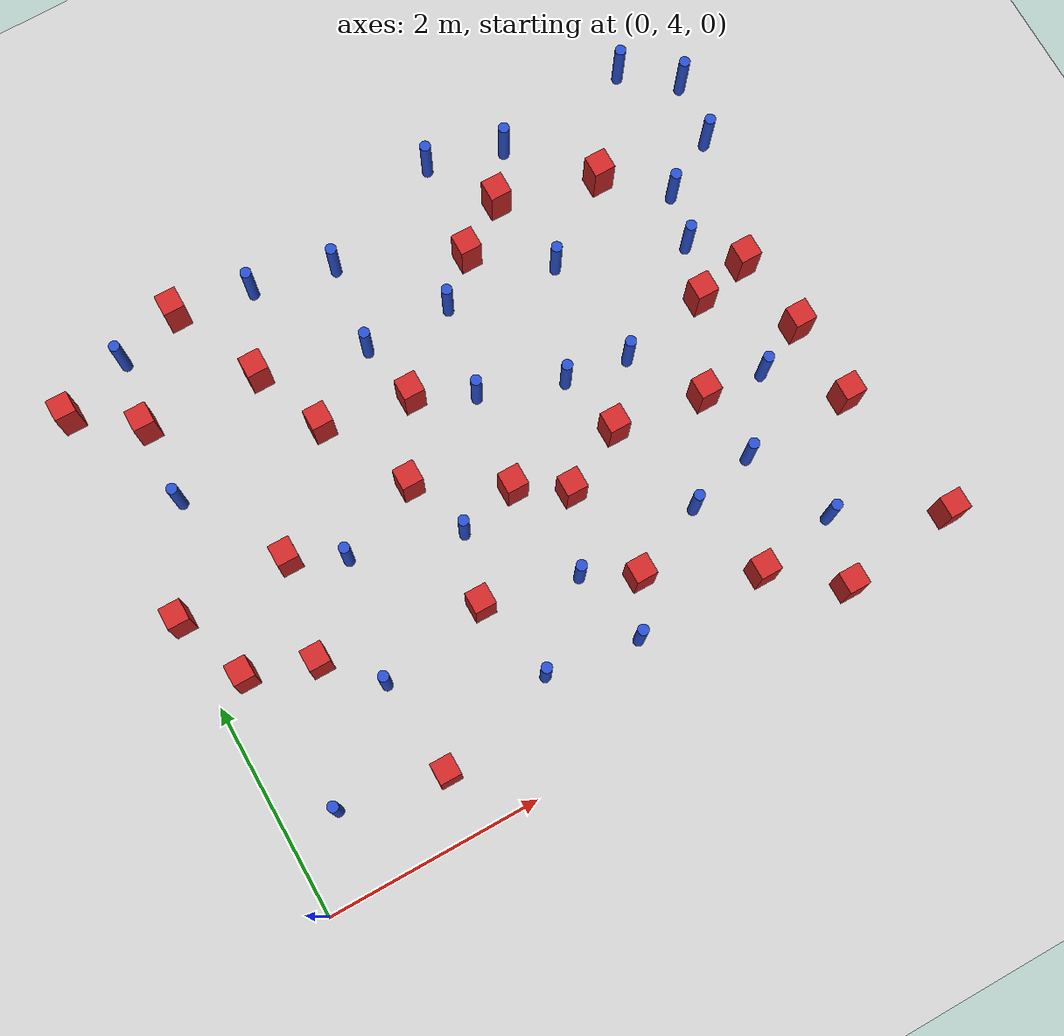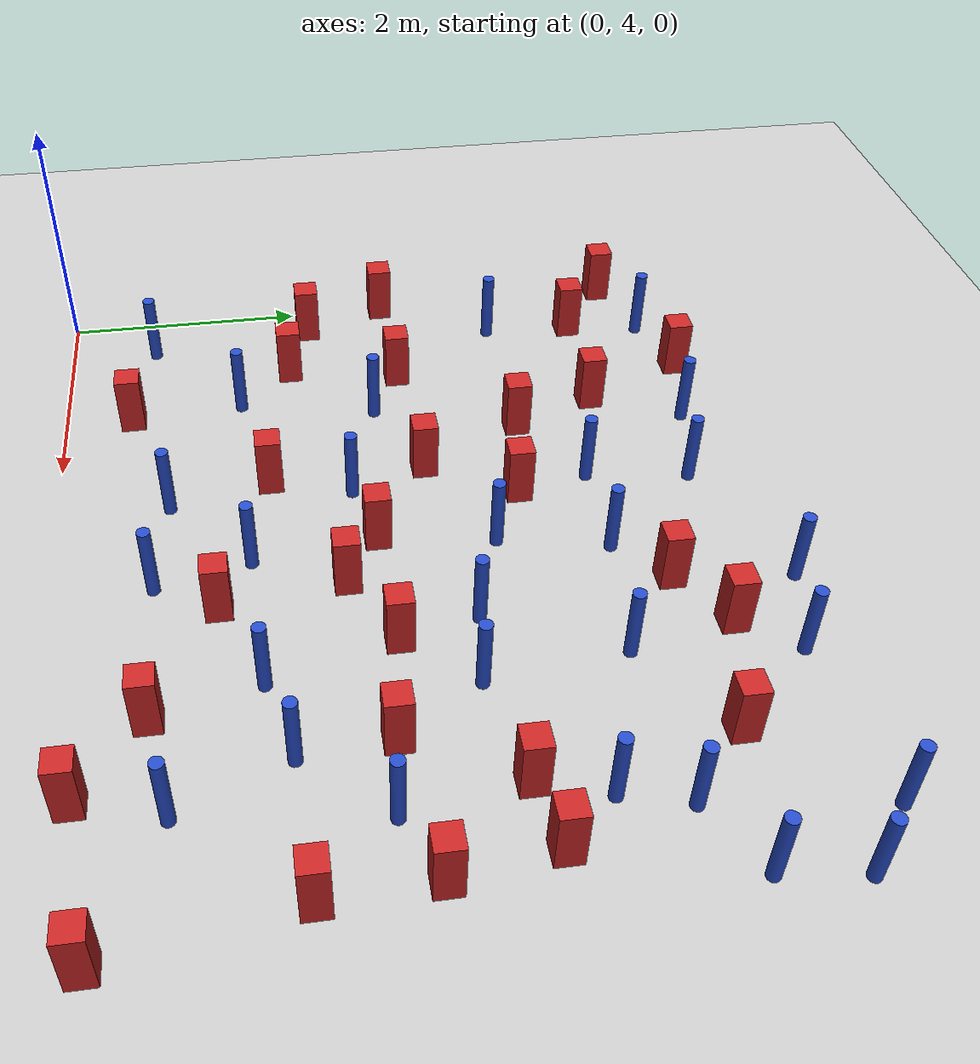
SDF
<sdf version="1.6">
 <world name="default">
  <model name="ground_plane">
   <static>1</static>
   <link name="link">
    <collision name="collision">
     <geometry><plane><normal>0 0 1</normal><size>100 100</size></plane></geometry>
     <surface><friction><ode><mu>100</mu><mu2>50</mu2></ode></friction></surface>
    </collision>
    <visual name="visual">
     <cast_shadows>0</cast_shadows>
     <geometry><plane><normal>0 0 1</normal><size>100 100</size></plane></geometry>
     <material>
      <ambient>1.0 1.0 1.0 1.0</ambient>
      <diffuse>0.8 0.8 0.8 1.0</diffuse>
      <specular>0.01 0.01 0.01 1.000000</specular>
     </material>
    </visual>
   </link>
  </model>
  <model name="pole_obstacle0">
   <static>true</static>
   <pose>3.42519751662 4.76027807811 -9.47619616065e-06 5.49618799738e-07 2.3631041406e-07 -1.55090534801e-07</pose>
   <link name="link">
    <pose>0 0 0.3 0 -0 0</pose>
    <inertial>
     <mass>1</mass>
     <inertia><ixx>0.145833</ixx><ixy>0</ixy><ixz>0</ixz><iyy>0.145833</iyy><iyz>0</iyz><izz>0.125</izz></inertia>
    </inertial>
    <collision name="collision">
     <geometry><cylinder><radius>0.05</radius><length>.6</length></cylinder></geometry>
    </collision>
    <visual name="visual">
     <geometry><cylinder><radius>0.05</radius><length>.6</length></cylinder></geometry>
     <material>
      <script><name>Gazebo/Blue</name><uri>file://media/materials/scripts/gazebo.material</uri></script>
     </material>
    </visual>
   </link>
  </model>
  <model name="square_post_obstacle2">
   <static>true</static>
   <pose>4.30037438824 8.85950573954 -6.11067671241e-07 -5.50515727128e-06 -8.79689657224e-07 2.37013304536e-05</pose>
   <link name="link">
    <pose>0 0 0.25 0 -0 0</pose>
    <inertial>
     <mass>100</mass>
     <inertia>
      <ixx>0.166667</ixx>
      <ixy>0</ixy>
      <ixz>0</ixz>
      <iyy>0.166667</iyy>
      <iyz>0</iyz>
      <izz>0.166667</izz>
     </inertia>
    </inertial>
    <collision name="collision"><geometry><box><size>.2 .2 .5</size></box></geometry></collision>
    <visual name="visual">
     <geometry><box><size>.2 .2 .5</size></box></geometry>
     <material>
      <script><name>Gazebo/Red</name><uri>file://media/materials/scripts/gazebo.material</uri></script>
     </material>
    </visual>
   </link>
  </model>
  <model name="pole_obstacle7">
   <static>true</static>
   <pose>2.56446868033 4.87630658331 -9.47619616065e-06 5.49618799738e-07 2.3631041406e-07 -1.55090534801e-07</pose>
   <link name="link">
    <pose>0 0 0.3 0 -0 0</pose>
    <inertial>
     <mass>1</mass>
     <inertia><ixx>0.145833</ixx><ixy>0</ixy><ixz>0</ixz><iyy>0.145833</iyy><iyz>0</iyz><izz>0.125</izz></inertia>
    </inertial>
    <collision name="collision">
     <geometry><cylinder><radius>0.05</radius><length>.6</length></cylinder></geometry>
    </collision>
    <visual name="visual">
     <geometry><cylinder><radius>0.05</radius><length>.6</length></cylinder></geometry>
     <material>
      <script><name>Gazebo/Blue</name><uri>file://media/materials/scripts/gazebo.material</uri></script>
     </material>
    </visual>
   </link>
  </model>
  <model name="square_post_obstacle11">
   <static>true</static>
   <pose>2.37454379669 5.67371568541 -6.11067671241e-07 -5.50515727128e-06 -8.79689657224e-07 2.37013304536e-05</pose>
   <link name="link">
    <pose>0 0 0.25 0 -0 0</pose>
    <inertial>
     <mass>100</mass>
     <inertia>
      <ixx>0.166667</ixx>
      <ixy>0</ixy>
      <ixz>0</ixz>
      <iyy>0.166667</iyy>
      <iyz>0</iyz>
      <izz>0.166667</izz>
     </inertia>
    </inertial>
    <collision name="collision"><geometry><box><size>.2 .2 .5</size></box></geometry></collision>
    <visual name="visual">
     <geometry><box><size>.2 .2 .5</size></box></geometry>
     <material>
      <script><name>Gazebo/Red</name><uri>file://media/materials/scripts/gazebo.material</uri></script>
     </material>
    </visual>
   </link>
  </model>
  <model name="square_post_obstacle25">
   <static>true</static>
   <pose>0.0494147492962 6.81524809905 -6.11067671241e-07 -5.50515727128e-06 -8.79689657224e-07 2.37013304536e-05</pose>
   <link name="link">
    <pose>0 0 0.25 0 -0 0</pose>
    <inertial>
     <mass>100</mass>
     <inertia>
      <ixx>0.166667</ixx>
      <ixy>0</ixy>
      <ixz>0</ixz>
      <iyy>0.166667</iyy>
      <iyz>0</iyz>
      <izz>0.166667</izz>
     </inertia>
    </inertial>
    <collision name="collision"><geometry><box><size>.2 .2 .5</size></box></geometry></collision>
    <visual name="visual">
     <geometry><box><size>.2 .2 .5</size></box></geometry>
     <material>
      <script><name>Gazebo/Red</name><uri>file://media/materials/scripts/gazebo.material</uri></script>
     </material>
    </visual>
   </link>
  </model>
  <model name="pole_obstacle20">
   <static>true</static>
   <pose>4.60419100089 6.99728581135 -9.47619616065e-06 5.49618799737e-07 2.36310414037e-07 -1.55090534814e-07</pose>
   <link name="link">
    <pose>0 0 0.3 0 -0 0</pose>
    <inertial>
     <mass>1</mass>
     <inertia><ixx>0.145833</ixx><ixy>0</ixy><ixz>0</ixz><iyy>0.145833</iyy><iyz>0</iyz><izz>0.125</izz></inertia>
    </inertial>
    <collision name="collision">
     <geometry><cylinder><radius>0.05</radius><length>.6</length></cylinder></geometry>
    </collision>
    <visual name="visual">
     <geometry><cylinder><radius>0.05</radius><length>.6</length></cylinder></geometry>
     <material>
      <script><name>Gazebo/Blue</name><uri>file://media/materials/scripts/gazebo.material</uri></script>
     </material>
    </visual>
   </link>
  </model>
  <model name="square_post_obstacle38">
   <static>true</static>
   <pose>4.15965569604 6.48254933006 -6.11067671241e-07 -5.50515727128e-06 -8.79689657224e-07 2.37013304536e-05</pose>
   <link name="link">
    <pose>0 0 0.25 0 -0 0</pose>
    <inertial>
     <mass>100</mass>
     <inertia>
      <ixx>0.166667</ixx>
      <ixy>0</ixy>
      <ixz>0</ixz>
      <iyy>0.166667</iyy>
      <iyz>0</iyz>
      <izz>0.166667</izz>
     </inertia>
    </inertial>
    <collision name="collision"><geometry><box><size>.2 .2 .5</size></box></geometry></collision>
    <visual name="visual">
     <geometry><box><size>.2 .2 .5</size></box></geometry>
     <material>
      <script><name>Gazebo/Red</name><uri>file://media/materials/scripts/gazebo.material</uri></script>
     </material>
    </visual>
   </link>
  </model>
  <model name="square_post_obstacle41">
   <static>true</static>
   <pose>3.12206015633 6.44788419928 -6.11067671241e-07 -5.50515727128e-06 -8.79689657224e-07 2.37013304536e-05</pose>
   <link name="link">
    <pose>0 0 0.25 0 -0 0</pose>
    <inertial>
     <mass>100</mass>
     <inertia>
      <ixx>0.166667</ixx>
      <ixy>0</ixy>
      <ixz>0</ixz>
      <iyy>0.166667</iyy>
      <iyz>0</iyz>
      <izz>0.166667</izz>
     </inertia>
    </inertial>
    <collision name="collision"><geometry><box><size>.2 .2 .5</size></box></geometry></collision>
    <visual name="visual">
     <geometry><box><size>.2 .2 .5</size></box></geometry>
     <material>
      <script><name>Gazebo/Red</name><uri>file://media/materials/scripts/gazebo.material</uri></script>
     </material>
    </visual>
   </link>
  </model>
  <model name="square_post_obstacle44">
   <static>true</static>
   <pose>1.10441877782 6.84504324427 -6.11067671241e-07 -5.50515727128e-06 -8.79689657224e-07 2.37013304536e-05</pose>
   <link name="link">
    <pose>0 0 0.25 0 -0 0</pose>
    <inertial>
     <mass>100</mass>
     <inertia>
      <ixx>0.166667</ixx>
      <ixy>0</ixy>
      <ixz>0</ixz>
      <iyy>0.166667</iyy>
      <iyz>0</iyz>
      <izz>0.166667</izz>
     </inertia>
    </inertial>
    <collision name="collision"><geometry><box><size>.2 .2 .5</size></box></geometry></collision>
    <visual name="visual">
     <geometry><box><size>.2 .2 .5</size></box></geometry>
     <material>
      <script><name>Gazebo/Red</name><uri>file://media/materials/scripts/gazebo.material</uri></script>
     </material>
    </visual>
   </link>
  </model>
  <model name="pole_obstacle46">
   <static>true</static>
   <pose>1.34421958619 5.47691415157 -9.47619616065e-06 5.49618799737e-07 2.36310414061e-07 -1.550905348e-07</pose>
   <link name="link">
    <pose>0 0 0.3 0 -0 0</pose>
    <inertial>
     <mass>1</mass>
     <inertia><ixx>0.145833</ixx><ixy>0</ixy><ixz>0</ixz><iyy>0.145833</iyy><iyz>0</iyz><izz>0.125</izz></inertia>
    </inertial>
    <collision name="collision">
     <geometry><cylinder><radius>0.05</radius><length>.6</length></cylinder></geometry>
    </collision>
    <visual name="visual">
     <geometry><cylinder><radius>0.05</radius><length>.6</length></cylinder></geometry>
     <material>
      <script><name>Gazebo/Blue</name><uri>file://media/materials/scripts/gazebo.material</uri></script>
     </material>
    </visual>
   </link>
  </model>
  <model name="pole_obstacle47">
   <static>true</static>
   <pose>4.42553539507 5.52645977439 -9.47619616065e-06 5.49618799737e-07 2.36310414037e-07 -1.55090534814e-07</pose>
   <link name="link">
    <pose>0 0 0.3 0 -0 0</pose>
    <inertial>
     <mass>1</mass>
     <inertia><ixx>0.145833</ixx><ixy>0</ixy><ixz>0</ixz><iyy>0.145833</iyy><iyz>0</iyz><izz>0.125</izz></inertia>
    </inertial>
    <collision name="collision">
     <geometry><cylinder><radius>0.05</radius><length>.6</length></cylinder></geometry>
    </collision>
    <visual name="visual">
     <geometry><cylinder><radius>0.05</radius><length>.6</length></cylinder></geometry>
     <material>
      <script><name>Gazebo/Blue</name><uri>file://media/materials/scripts/gazebo.material</uri></script>
     </material>
    </visual>
   </link>
  </model>
  <model name="pole_obstacle48">
   <static>true</static>
   <pose>3.43337528128 8.19324354949 -9.4761961606e-06 5.49618799729e-07 2.36310414e-07 -1.55090534824e-07</pose>
   <link name="link">
    <pose>0 0 0.3 0 -0 0</pose>
    <inertial>
     <mass>1</mass>
     <inertia><ixx>0.145833</ixx><ixy>0</ixy><ixz>0</ixz><iyy>0.145833</iyy><iyz>0</iyz><izz>0.125</izz></inertia>
    </inertial>
    <collision name="collision">
     <geometry><cylinder><radius>0.05</radius><length>.6</length></cylinder></geometry>
    </collision>
    <visual name="visual">
     <geometry><cylinder><radius>0.05</radius><length>.6</length></cylinder></geometry>
     <material>
      <script><name>Gazebo/Blue</name><uri>file://media/materials/scripts/gazebo.material</uri></script>
     </material>
    </visual>
   </link>
  </model>
  <model name="square_post_obstacle52">
   <static>true</static>
   <pose>5.00746271588 6.36337434543 -6.11067671241e-07 -5.50515727128e-06 -8.79689657224e-07 2.37013304536e-05</pose>
   <link name="link">
    <pose>0 0 0.25 0 -0 0</pose>
    <inertial>
     <mass>100</mass>
     <inertia>
      <ixx>0.166667</ixx>
      <ixy>0</ixy>
      <ixz>0</ixz>
      <iyy>0.166667</iyy>
      <iyz>0</iyz>
      <izz>0.166667</izz>
     </inertia>
    </inertial>
    <collision name="collision"><geometry><box><size>.2 .2 .5</size></box></geometry></collision>
    <visual name="visual">
     <geometry><box><size>.2 .2 .5</size></box></geometry>
     <material>
      <script><name>Gazebo/Red</name><uri>file://media/materials/scripts/gazebo.material</uri></script>
     </material>
    </visual>
   </link>
  </model>
  <model name="pole_obstacle56">
   <static>true</static>
   <pose>1.96920921197 9.18855052757 -9.47619616065e-06 5.49618799737e-07 2.3631041405e-07 -1.55090534805e-07</pose>
   <link name="link">
    <pose>0 0 0.3 0 -0 0</pose>
    <inertial>
     <mass>1</mass>
     <inertia><ixx>0.145833</ixx><ixy>0</ixy><ixz>0</ixz><iyy>0.145833</iyy><iyz>0</iyz><izz>0.125</izz></inertia>
    </inertial>
    <collision name="collision">
     <geometry><cylinder><radius>0.05</radius><length>.6</length></cylinder></geometry>
    </collision>
    <visual name="visual">
     <geometry><cylinder><radius>0.05</radius><length>.6</length></cylinder></geometry>
     <material>
      <script><name>Gazebo/Blue</name><uri>file://media/materials/scripts/gazebo.material</uri></script>
     </material>
    </visual>
   </link>
  </model>
  <model name="pole_obstacle59">
   <static>true</static>
   <pose>4.47045693877 8.06714442049 -9.47619616065e-06 5.49618799737e-07 2.36310414065e-07 -1.55090534796e-07</pose>
   <link name="link">
    <pose>0 0 0.3 0 -0 0</pose>
    <inertial>
     <mass>1</mass>
     <inertia><ixx>0.145833</ixx><ixy>0</ixy><ixz>0</ixz><iyy>0.145833</iyy><iyz>0</iyz><izz>0.125</izz></inertia>
    </inertial>
    <collision name="collision">
     <geometry><cylinder><radius>0.05</radius><length>.6</length></cylinder></geometry>
    </collision>
    <visual name="visual">
     <geometry><cylinder><radius>0.05</radius><length>.6</length></cylinder></geometry>
     <material>
      <script><name>Gazebo/Blue</name><uri>file://media/materials/scripts/gazebo.material</uri></script>
     </material>
    </visual>
   </link>
  </model>
  <model name="square_post_obstacle63">
   <static>true</static>
   <pose>0.0136247869274 8.92046963981 -6.11067671241e-07 -5.50515727128e-06 -8.79689657224e-07 2.37013304536e-05</pose>
   <link name="link">
    <pose>0 0 0.25 0 -0 0</pose>
    <inertial>
     <mass>100</mass>
     <inertia>
      <ixx>0.166667</ixx>
      <ixy>0</ixy>
      <ixz>0</ixz>
      <iyy>0.166667</iyy>
      <iyz>0</iyz>
      <izz>0.166667</izz>
     </inertia>
    </inertial>
    <collision name="collision"><geometry><box><size>.2 .2 .5</size></box></geometry></collision>
    <visual name="visual">
     <geometry><box><size>.2 .2 .5</size></box></geometry>
     <material>
      <script><name>Gazebo/Red</name><uri>file://media/materials/scripts/gazebo.material</uri></script>
     </material>
    </visual>
   </link>
  </model>
  <model name="pole_obstacle69">
   <static>true</static>
   <pose>0.477508021529 4.73802459577 -9.47619616065e-06 5.49618799737e-07 2.36310414066e-07 -1.55090534795e-07</pose>
   <link name="link">
    <pose>0 0 0.3 0 -0 0</pose>
    <inertial>
     <mass>1</mass>
     <inertia><ixx>0.145833</ixx><ixy>0</ixy><ixz>0</ixz><iyy>0.145833</iyy><iyz>0</iyz><izz>0.125</izz></inertia>
    </inertial>
    <collision name="collision">
     <geometry><cylinder><radius>0.05</radius><length>.6</length></cylinder></geometry>
    </collision>
    <visual name="visual">
     <geometry><cylinder><radius>0.05</radius><length>.6</length></cylinder></geometry>
     <material>
      <script><name>Gazebo/Blue</name><uri>file://media/materials/scripts/gazebo.material</uri></script>
     </material>
    </visual>
   </link>
  </model>
  <model name="pole_obstacle82">
   <static>true</static>
   <pose>3.25794607188 7.34439213122 -9.47619616065e-06 5.49618799738e-07 2.3631041406e-07 -1.55090534801e-07</pose>
   <link name="link">
    <pose>0 0 0.3 0 -0 0</pose>
    <inertial>
     <mass>1</mass>
     <inertia><ixx>0.145833</ixx><ixy>0</ixy><ixz>0</ixz><iyy>0.145833</iyy><iyz>0</iyz><izz>0.125</izz></inertia>
    </inertial>
    <collision name="collision">
     <geometry><cylinder><radius>0.05</radius><length>.6</length></cylinder></geometry>
    </collision>
    <visual name="visual">
     <geometry><cylinder><radius>0.05</radius><length>.6</length></cylinder></geometry>
     <material>
      <script><name>Gazebo/Blue</name><uri>file://media/materials/scripts/gazebo.material</uri></script>
     </material>
    </visual>
   </link>
  </model>
  <model name="pole_obstacle84">
   <static>true</static>
   <pose>2.56474451342 6.31165506239 -9.47619616065e-06 5.49618799738e-07 2.3631041406e-07 -1.55090534801e-07</pose>
   <link name="link">
    <pose>0 0 0.3 0 -0 0</pose>
    <inertial>
     <mass>1</mass>
     <inertia><ixx>0.145833</ixx><ixy>0</ixy><ixz>0</ixz><iyy>0.145833</iyy><iyz>0</iyz><izz>0.125</izz></inertia>
    </inertial>
    <collision name="collision">
     <geometry><cylinder><radius>0.05</radius><length>.6</length></cylinder></geometry>
    </collision>
    <visual name="visual">
     <geometry><cylinder><radius>0.05</radius><length>.6</length></cylinder></geometry>
     <material>
      <script><name>Gazebo/Blue</name><uri>file://media/materials/scripts/gazebo.material</uri></script>
     </material>
    </visual>
   </link>
  </model>
  <model name="square_post_obstacle80">
   <static>true</static>
   <pose>2.34831098912 6.91590490867 -6.11067671241e-07 -5.50515727128e-06 -8.79689657224e-07 2.37013304536e-05</pose>
   <link name="link">
    <pose>0 0 0.25 0 -0 0</pose>
    <inertial>
     <mass>100</mass>
     <inertia>
      <ixx>0.166667</ixx>
      <ixy>0</ixy>
      <ixz>0</ixz>
      <iyy>0.166667</iyy>
      <iyz>0</iyz>
      <izz>0.166667</izz>
     </inertia>
    </inertial>
    <collision name="collision"><geometry><box><size>.2 .2 .5</size></box></geometry></collision>
    <visual name="visual">
     <geometry><box><size>.2 .2 .5</size></box></geometry>
     <material>
      <script><name>Gazebo/Red</name><uri>file://media/materials/scripts/gazebo.material</uri></script>
     </material>
    </visual>
   </link>
  </model>
  <model name="square_post_obstacle90">
   <static>true</static>
   <pose>1.43009679671 4.5644416992 -6.11067671241e-07 -5.50515727128e-06 -8.79689657224e-07 2.37013304536e-05</pose>
   <link name="link">
    <pose>0 0 0.25 0 -0 0</pose>
    <inertial>
     <mass>100</mass>
     <inertia>
      <ixx>0.166667</ixx>
      <ixy>0</ixy>
      <ixz>0</ixz>
      <iyy>0.166667</iyy>
      <iyz>0</iyz>
      <izz>0.166667</izz>
     </inertia>
    </inertial>
    <collision name="collision"><geometry><box><size>.2 .2 .5</size></box></geometry></collision>
    <visual name="visual">
     <geometry><box><size>.2 .2 .5</size></box></geometry>
     <material>
      <script><name>Gazebo/Red</name><uri>file://media/materials/scripts/gazebo.material</uri></script>
     </material>
    </visual>
   </link>
  </model>
  <model name="square_post_obstacle105">
   <static>true</static>
   <pose>5.44392774594 7.15984247554 -6.11067671241e-07 -5.50515727128e-06 -8.79689657224e-07 2.37013304536e-05</pose>
   <link name="link">
    <pose>0 0 0.25 0 -0 0</pose>
    <inertial>
     <mass>100</mass>
     <inertia>
      <ixx>0.166667</ixx>
      <ixy>0</ixy>
      <ixz>0</ixz>
      <iyy>0.166667</iyy>
      <iyz>0</iyz>
      <izz>0.166667</izz>
     </inertia>
    </inertial>
    <collision name="collision"><geometry><box><size>.2 .2 .5</size></box></geometry></collision>
    <visual name="visual">
     <geometry><box><size>.2 .2 .5</size></box></geometry>
     <material>
      <script><name>Gazebo/Red</name><uri>file://media/materials/scripts/gazebo.material</uri></script>
     </material>
    </visual>
   </link>
  </model>
  <model name="square_post_obstacle107">
   <static>true</static>
   <pose>6.09477217079 5.74118330837 -6.11067671241e-07 -5.50515727128e-06 -8.79689657224e-07 2.37013304536e-05</pose>
   <link name="link">
    <pose>0 0 0.25 0 -0 0</pose>
    <inertial>
     <mass>100</mass>
     <inertia>
      <ixx>0.166667</ixx>
      <ixy>0</ixy>
      <ixz>0</ixz>
      <iyy>0.166667</iyy>
      <iyz>0</iyz>
      <izz>0.166667</izz>
     </inertia>
    </inertial>
    <collision name="collision"><geometry><box><size>.2 .2 .5</size></box></geometry></collision>
    <visual name="visual">
     <geometry><box><size>.2 .2 .5</size></box></geometry>
     <material>
      <script><name>Gazebo/Red</name><uri>file://media/materials/scripts/gazebo.material</uri></script>
     </material>
    </visual>
   </link>
  </model>
  <model name="square_post_obstacle109">
   <static>true</static>
   <pose>1.26573371415 9.31792817508 -6.11067671241e-07 -5.50515727128e-06 -8.79689657224e-07 2.37013304536e-05</pose>
   <link name="link">
    <pose>0 0 0.25 0 -0 0</pose>
    <inertial>
     <mass>100</mass>
     <inertia>
      <ixx>0.166667</ixx>
      <ixy>0</ixy>
      <ixz>0</ixz>
      <iyy>0.166667</iyy>
      <iyz>0</iyz>
      <izz>0.166667</izz>
     </inertia>
    </inertial>
    <collision name="collision"><geometry><box><size>.2 .2 .5</size></box></geometry></collision>
    <visual name="visual">
     <geometry><box><size>.2 .2 .5</size></box></geometry>
     <material>
      <script><name>Gazebo/Red</name><uri>file://media/materials/scripts/gazebo.material</uri></script>
     </material>
    </visual>
   </link>
  </model>
  <model name="pole_obstacle122">
   <static>true</static>
   <pose>5.73760718489 8.15019196979 -9.47619616065e-06 5.49618799737e-07 2.36310414065e-07 -1.55090534796e-07</pose>
   <link name="link">
    <pose>0 0 0.3 0 -0 0</pose>
    <inertial>
     <mass>1</mass>
     <inertia><ixx>0.145833</ixx><ixy>0</ixy><ixz>0</ixz><iyy>0.145833</iyy><iyz>0</iyz><izz>0.125</izz></inertia>
    </inertial>
    <collision name="collision">
     <geometry><cylinder><radius>0.05</radius><length>.6</length></cylinder></geometry>
    </collision>
    <visual name="visual">
     <geometry><cylinder><radius>0.05</radius><length>.6</length></cylinder></geometry>
     <material>
      <script><name>Gazebo/Blue</name><uri>file://media/materials/scripts/gazebo.material</uri></script>
     </material>
    </visual>
   </link>
  </model>
  <model name="square_post_obstacle124">
   <static>true</static>
   <pose>6.32409534075 4.41761881316 -6.11067671241e-07 -5.50515727128e-06 -8.79689657224e-07 2.37013304536e-05</pose>
   <link name="link">
    <pose>0 0 0.25 0 -0 0</pose>
    <inertial>
     <mass>100</mass>
     <inertia>
      <ixx>0.166667</ixx>
      <ixy>0</ixy>
      <ixz>0</ixz>
      <iyy>0.166667</iyy>
      <iyz>0</iyz>
      <izz>0.166667</izz>
     </inertia>
    </inertial>
    <collision name="collision"><geometry><box><size>.2 .2 .5</size></box></geometry></collision>
    <visual name="visual">
     <geometry><box><size>.2 .2 .5</size></box></geometry>
     <material>
      <script><name>Gazebo/Red</name><uri>file://media/materials/scripts/gazebo.material</uri></script>
     </material>
    </visual>
   </link>
  </model>
  <model name="square_post_obstacle125">
   <static>true</static>
   <pose>1.64940454477 8.45524234289 -6.11067671241e-07 -5.50515727128e-06 -8.79689657224e-07 2.37013304536e-05</pose>
   <link name="link">
    <pose>0 0 0.25 0 -0 0</pose>
    <inertial>
     <mass>100</mass>
     <inertia>
      <ixx>0.166667</ixx>
      <ixy>0</ixy>
      <ixz>0</ixz>
      <iyy>0.166667</iyy>
      <iyz>0</iyz>
      <izz>0.166667</izz>
     </inertia>
    </inertial>
    <collision name="collision"><geometry><box><size>.2 .2 .5</size></box></geometry></collision>
    <visual name="visual">
     <geometry><box><size>.2 .2 .5</size></box></geometry>
     <material>
      <script><name>Gazebo/Red</name><uri>file://media/materials/scripts/gazebo.material</uri></script>
     </material>
    </visual>
   </link>
  </model>
  <model name="pole_obstacle140">
   <static>true</static>
   <pose>5.40350480167 4.88394591043 -9.47619616065e-06 5.49618799737e-07 2.36310414037e-07 -1.55090534814e-07</pose>
   <link name="link">
    <pose>0 0 0.3 0 -0 0</pose>
    <inertial>
     <mass>1</mass>
     <inertia><ixx>0.145833</ixx><ixy>0</ixy><ixz>0</ixz><iyy>0.145833</iyy><iyz>0</iyz><izz>0.125</izz></inertia>
    </inertial>
    <collision name="collision">
     <geometry><cylinder><radius>0.05</radius><length>.6</length></cylinder></geometry>
    </collision>
    <visual name="visual">
     <geometry><cylinder><radius>0.05</radius><length>.6</length></cylinder></geometry>
     <material>
      <script><name>Gazebo/Blue</name><uri>file://media/materials/scripts/gazebo.material</uri></script>
     </material>
    </visual>
   </link>
  </model>
  <model name="square_post_obstacle132">
   <static>true</static>
   <pose>0.565958896693 8.50421960447 -6.11067671241e-07 -5.50515727128e-06 -8.79689657224e-07 2.37013304536e-05</pose>
   <link name="link">
    <pose>0 0 0.25 0 -0 0</pose>
    <inertial>
     <mass>100</mass>
     <inertia>
      <ixx>0.166667</ixx>
      <ixy>0</ixy>
      <ixz>0</ixz>
      <iyy>0.166667</iyy>
      <iyz>0</iyz>
      <izz>0.166667</izz>
     </inertia>
    </inertial>
    <collision name="collision"><geometry><box><size>.2 .2 .5</size></box></geometry></collision>
    <visual name="visual">
     <geometry><box><size>.2 .2 .5</size></box></geometry>
     <material>
      <script><name>Gazebo/Red</name><uri>file://media/materials/scripts/gazebo.material</uri></script>
     </material>
    </visual>
   </link>
  </model>
  <model name="pole_obstacle143">
   <static>true</static>
   <pose>0.663973570426 9.14326184651 -9.47619616065e-06 5.49618799737e-07 2.36310414038e-07 -1.55090534813e-07</pose>
   <link name="link">
    <pose>0 0 0.3 0 -0 0</pose>
    <inertial>
     <mass>1</mass>
     <inertia><ixx>0.145833</ixx><ixy>0</ixy><ixz>0</ixz><iyy>0.145833</iyy><iyz>0</iyz><izz>0.125</izz></inertia>
    </inertial>
    <collision name="collision">
     <geometry><cylinder><radius>0.05</radius><length>.6</length></cylinder></geometry>
    </collision>
    <visual name="visual">
     <geometry><cylinder><radius>0.05</radius><length>.6</length></cylinder></geometry>
     <material>
      <script><name>Gazebo/Blue</name><uri>file://media/materials/scripts/gazebo.material</uri></script>
     </material>
    </visual>
   </link>
  </model>
  <model name="square_post_obstacle134">
   <static>true</static>
   <pose>2.74144336443 7.6134169084 -6.11067671241e-07 -5.50515727128e-06 -8.79689657224e-07 2.37013304536e-05</pose>
   <link name="link">
    <pose>0 0 0.25 0 -0 0</pose>
    <inertial>
     <mass>100</mass>
     <inertia>
      <ixx>0.166667</ixx>
      <ixy>0</ixy>
      <ixz>0</ixz>
      <iyy>0.166667</iyy>
      <iyz>0</iyz>
      <izz>0.166667</izz>
     </inertia>
    </inertial>
    <collision name="collision"><geometry><box><size>.2 .2 .5</size></box></geometry></collision>
    <visual name="visual">
     <geometry><box><size>.2 .2 .5</size></box></geometry>
     <material>
      <script><name>Gazebo/Red</name><uri>file://media/materials/scripts/gazebo.material</uri></script>
     </material>
    </visual>
   </link>
  </model>
  <model name="square_post_obstacle135">
   <static>true</static>
   <pose>5.22396523268 8.60870765713 -6.11067671241e-07 -5.50515727128e-06 -8.79689657224e-07 2.37013304536e-05</pose>
   <link name="link">
    <pose>0 0 0.25 0 -0 0</pose>
    <inertial>
     <mass>100</mass>
     <inertia>
      <ixx>0.166667</ixx>
      <ixy>0</ixy>
      <ixz>0</ixz>
      <iyy>0.166667</iyy>
      <iyz>0</iyz>
      <izz>0.166667</izz>
     </inertia>
    </inertial>
    <collision name="collision"><geometry><box><size>.2 .2 .5</size></box></geometry></collision>
    <visual name="visual">
     <geometry><box><size>.2 .2 .5</size></box></geometry>
     <material>
      <script><name>Gazebo/Red</name><uri>file://media/materials/scripts/gazebo.material</uri></script>
     </material>
    </visual>
   </link>
  </model>
  <model name="pole_obstacle145">
   <static>true</static>
   <pose>0.528818769152 7.76353143506 -9.47619616065e-06 5.49618799737e-07 2.36310414064e-07 -1.55090534796e-07</pose>
   <link name="link">
    <pose>0 0 0.3 0 -0 0</pose>
    <inertial>
     <mass>1</mass>
     <inertia><ixx>0.145833</ixx><ixy>0</ixy><ixz>0</ixz><iyy>0.145833</iyy><iyz>0</iyz><izz>0.125</izz></inertia>
    </inertial>
    <collision name="collision">
     <geometry><cylinder><radius>0.05</radius><length>.6</length></cylinder></geometry>
    </collision>
    <visual name="visual">
     <geometry><cylinder><radius>0.05</radius><length>.6</length></cylinder></geometry>
     <material>
      <script><name>Gazebo/Blue</name><uri>file://media/materials/scripts/gazebo.material</uri></script>
     </material>
    </visual>
   </link>
  </model>
  <model name="pole_obstacle149">
   <static>true</static>
   <pose>3.24715801248 5.48613815929 -9.47619616065e-06 5.49618799738e-07 2.3631041406e-07 -1.55090534801e-07</pose>
   <link name="link">
    <pose>0 0 0.3 0 -0 0</pose>
    <inertial>
     <mass>1</mass>
     <inertia><ixx>0.145833</ixx><ixy>0</ixy><ixz>0</ixz><iyy>0.145833</iyy><iyz>0</iyz><izz>0.125</izz></inertia>
    </inertial>
    <collision name="collision">
     <geometry><cylinder><radius>0.05</radius><length>.6</length></cylinder></geometry>
    </collision>
    <visual name="visual">
     <geometry><cylinder><radius>0.05</radius><length>.6</length></cylinder></geometry>
     <material>
      <script><name>Gazebo/Blue</name><uri>file://media/materials/scripts/gazebo.material</uri></script>
     </material>
    </visual>
   </link>
  </model>
  <model name="pole_obstacle153">
   <static>true</static>
   <pose>4.01493870957 7.08030208691 -9.47619616065e-06 5.49618799737e-07 2.36310414037e-07 -1.55090534814e-07</pose>
   <link name="link">
    <pose>0 0 0.3 0 -0 0</pose>
    <inertial>
     <mass>1</mass>
     <inertia><ixx>0.145833</ixx><ixy>0</ixy><ixz>0</ixz><iyy>0.145833</iyy><iyz>0</iyz><izz>0.125</izz></inertia>
    </inertial>
    <collision name="collision">
     <geometry><cylinder><radius>0.05</radius><length>.6</length></cylinder></geometry>
    </collision>
    <visual name="visual">
     <geometry><cylinder><radius>0.05</radius><length>.6</length></cylinder></geometry>
     <material>
      <script><name>Gazebo/Blue</name><uri>file://media/materials/scripts/gazebo.material</uri></script>
     </material>
    </visual>
   </link>
  </model>
  <model name="square_post_obstacle145">
   <static>true</static>
   <pose>5.94766395371 7.26461576987 -6.11067671241e-07 -5.50515727128e-06 -8.79689657224e-07 2.37013304536e-05</pose>
   <link name="link">
    <pose>0 0 0.25 0 -0 0</pose>
    <inertial>
     <mass>100</mass>
     <inertia>
      <ixx>0.166667</ixx>
      <ixy>0</ixy>
      <ixz>0</ixz>
      <iyy>0.166667</iyy>
      <iyz>0</iyz>
      <izz>0.166667</izz>
     </inertia>
    </inertial>
    <collision name="collision"><geometry><box><size>.2 .2 .5</size></box></geometry></collision>
    <visual name="visual">
     <geometry><box><size>.2 .2 .5</size></box></geometry>
     <material>
      <script><name>Gazebo/Red</name><uri>file://media/materials/scripts/gazebo.material</uri></script>
     </material>
    </visual>
   </link>
  </model>
  <model name="square_post_obstacle153">
   <static>true</static>
   <pose>0.313976762827 6.12160719833 -6.11067671241e-07 -5.50515727128e-06 -8.79689657224e-07 2.37013304536e-05</pose>
   <link name="link">
    <pose>0 0 0.25 0 -0 0</pose>
    <inertial>
     <mass>100</mass>
     <inertia>
      <ixx>0.166667</ixx>
      <ixy>0</ixy>
      <ixz>0</ixz>
      <iyy>0.166667</iyy>
      <iyz>0</iyz>
      <izz>0.166667</izz>
     </inertia>
    </inertial>
    <collision name="collision"><geometry><box><size>.2 .2 .5</size></box></geometry></collision>
    <visual name="visual">
     <geometry><box><size>.2 .2 .5</size></box></geometry>
     <material>
      <script><name>Gazebo/Red</name><uri>file://media/materials/scripts/gazebo.material</uri></script>
     </material>
    </visual>
   </link>
  </model>
  <model name="pole_obstacle162">
   <static>true</static>
   <pose>6.26874978814 8.45198604825 -9.47619616065e-06 5.49618799737e-07 2.36310414065e-07 -1.55090534796e-07</pose>
   <link name="link">
    <pose>0 0 0.3 0 -0 0</pose>
    <inertial>
     <mass>1</mass>
     <inertia><ixx>0.145833</ixx><ixy>0</ixy><ixz>0</ixz><iyy>0.145833</iyy><iyz>0</iyz><izz>0.125</izz></inertia>
    </inertial>
    <collision name="collision">
     <geometry><cylinder><radius>0.05</radius><length>.6</length></cylinder></geometry>
    </collision>
    <visual name="visual">
     <geometry><cylinder><radius>0.05</radius><length>.6</length></cylinder></geometry>
     <material>
      <script><name>Gazebo/Blue</name><uri>file://media/materials/scripts/gazebo.material</uri></script>
     </material>
    </visual>
   </link>
  </model>
  <model name="square_post_obstacle155">
   <static>true</static>
   <pose>3.6960696637 5.23325129096 -6.11067671241e-07 -5.50515727128e-06 -8.79689657224e-07 2.37013304536e-05</pose>
   <link name="link">
    <pose>0 0 0.25 0 -0 0</pose>
    <inertial>
     <mass>100</mass>
     <inertia>
      <ixx>0.166667</ixx>
      <ixy>0</ixy>
      <ixz>0</ixz>
      <iyy>0.166667</iyy>
      <iyz>0</iyz>
      <izz>0.166667</izz>
     </inertia>
    </inertial>
    <collision name="collision"><geometry><box><size>.2 .2 .5</size></box></geometry></collision>
    <visual name="visual">
     <geometry><box><size>.2 .2 .5</size></box></geometry>
     <material>
      <script><name>Gazebo/Red</name><uri>file://media/materials/scripts/gazebo.material</uri></script>
     </material>
    </visual>
   </link>
  </model>
  <model name="pole_obstacle166">
   <static>true</static>
   <pose>2.72472892395 9.01856090707 -9.4761961606e-06 5.49618799729e-07 2.36310414e-07 -1.55090534824e-07</pose>
   <link name="link">
    <pose>0 0 0.3 0 -0 0</pose>
    <inertial>
     <mass>1</mass>
     <inertia><ixx>0.145833</ixx><ixy>0</ixy><ixz>0</ixz><iyy>0.145833</iyy><iyz>0</iyz><izz>0.125</izz></inertia>
    </inertial>
    <collision name="collision">
     <geometry><cylinder><radius>0.05</radius><length>.6</length></cylinder></geometry>
    </collision>
    <visual name="visual">
     <geometry><cylinder><radius>0.05</radius><length>.6</length></cylinder></geometry>
     <material>
      <script><name>Gazebo/Blue</name><uri>file://media/materials/scripts/gazebo.material</uri></script>
     </material>
    </visual>
   </link>
  </model>
  <model name="pole_obstacle176">
   <static>true</static>
   <pose>5.90491858849 9.42807636434 -9.47619616065e-06 5.49618799737e-07 2.36310414065e-07 -1.55090534796e-07</pose>
   <link name="link">
    <pose>0 0 0.3 0 -0 0</pose>
    <inertial>
     <mass>1</mass>
     <inertia><ixx>0.145833</ixx><ixy>0</ixy><ixz>0</ixz><iyy>0.145833</iyy><iyz>0</iyz><izz>0.125</izz></inertia>
    </inertial>
    <collision name="collision">
     <geometry><cylinder><radius>0.05</radius><length>.6</length></cylinder></geometry>
    </collision>
    <visual name="visual">
     <geometry><cylinder><radius>0.05</radius><length>.6</length></cylinder></geometry>
     <material>
      <script><name>Gazebo/Blue</name><uri>file://media/materials/scripts/gazebo.material</uri></script>
     </material>
    </visual>
   </link>
  </model>
  <model name="square_post_obstacle166">
   <static>true</static>
   <pose>3.55520310612 6.17612678743 -6.11067671241e-07 -5.50515727128e-06 -8.79689657224e-07 2.37013304536e-05</pose>
   <link name="link">
    <pose>0 0 0.25 0 -0 0</pose>
    <inertial>
     <mass>100</mass>
     <inertia>
      <ixx>0.166667</ixx>
      <ixy>0</ixy>
      <ixz>0</ixz>
      <iyy>0.166667</iyy>
      <iyz>0</iyz>
      <izz>0.166667</izz>
     </inertia>
    </inertial>
    <collision name="collision"><geometry><box><size>.2 .2 .5</size></box></geometry></collision>
    <visual name="visual">
     <geometry><box><size>.2 .2 .5</size></box></geometry>
     <material>
      <script><name>Gazebo/Red</name><uri>file://media/materials/scripts/gazebo.material</uri></script>
     </material>
    </visual>
   </link>
  </model>
  <model name="pole_obstacle181">
   <static>true</static>
   <pose>5.57871180391 6.29199043348 -9.47619616065e-06 5.49618799737e-07 2.36310414037e-07 -1.55090534814e-07</pose>
   <link name="link">
    <pose>0 0 0.3 0 -0 0</pose>
    <inertial>
     <mass>1</mass>
     <inertia><ixx>0.145833</ixx><ixy>0</ixy><ixz>0</ixz><iyy>0.145833</iyy><iyz>0</iyz><izz>0.125</izz></inertia>
    </inertial>
    <collision name="collision">
     <geometry><cylinder><radius>0.05</radius><length>.6</length></cylinder></geometry>
    </collision>
    <visual name="visual">
     <geometry><cylinder><radius>0.05</radius><length>.6</length></cylinder></geometry>
     <material>
      <script><name>Gazebo/Blue</name><uri>file://media/materials/scripts/gazebo.material</uri></script>
     </material>
    </visual>
   </link>
  </model>
  <model name="pole_obstacle182">
   <static>true</static>
   <pose>1.57053109602 6.59716293564 -9.47619616065e-06 5.49618799737e-07 2.36310414061e-07 -1.550905348e-07</pose>
   <link name="link">
    <pose>0 0 0.3 0 -0 0</pose>
    <inertial>
     <mass>1</mass>
     <inertia><ixx>0.145833</ixx><ixy>0</ixy><ixz>0</ixz><iyy>0.145833</iyy><iyz>0</iyz><izz>0.125</izz></inertia>
    </inertial>
    <collision name="collision">
     <geometry><cylinder><radius>0.05</radius><length>.6</length></cylinder></geometry>
    </collision>
    <visual name="visual">
     <geometry><cylinder><radius>0.05</radius><length>.6</length></cylinder></geometry>
     <material>
      <script><name>Gazebo/Blue</name><uri>file://media/materials/scripts/gazebo.material</uri></script>
     </material>
    </visual>
   </link>
  </model>
  <model name="pole_obstacle184">
   <static>true</static>
   <pose>6.35421542376 9.04654331823 -9.47619616065e-06 5.49618799737e-07 2.36310414065e-07 -1.55090534796e-07</pose>
   <link name="link">
    <pose>0 0 0.3 0 -0 0</pose>
    <inertial>
     <mass>1</mass>
     <inertia><ixx>0.145833</ixx><ixy>0</ixy><ixz>0</ixz><iyy>0.145833</iyy><iyz>0</iyz><izz>0.125</izz></inertia>
    </inertial>
    <collision name="collision">
     <geometry><cylinder><radius>0.05</radius><length>.6</length></cylinder></geometry>
    </collision>
    <visual name="visual">
     <geometry><cylinder><radius>0.05</radius><length>.6</length></cylinder></geometry>
     <material>
      <script><name>Gazebo/Blue</name><uri>file://media/materials/scripts/gazebo.material</uri></script>
     </material>
    </visual>
   </link>
  </model>
  <model name="square_post_obstacle175">
   <static>true</static>
   <pose>1.91941839755 7.760278355 -6.11067671241e-07 -5.50515727128e-06 -8.79689657224e-07 2.37013304536e-05</pose>
   <link name="link">
    <pose>0 0 0.25 0 -0 0</pose>
    <inertial>
     <mass>100</mass>
     <inertia>
      <ixx>0.166667</ixx>
      <ixy>0</ixy>
      <ixz>0</ixz>
      <iyy>0.166667</iyy>
      <iyz>0</iyz>
      <izz>0.166667</izz>
     </inertia>
    </inertial>
    <collision name="collision"><geometry><box><size>.2 .2 .5</size></box></geometry></collision>
    <visual name="visual">
     <geometry><box><size>.2 .2 .5</size></box></geometry>
     <material>
      <script><name>Gazebo/Red</name><uri>file://media/materials/scripts/gazebo.material</uri></script>
     </material>
    </visual>
   </link>
  </model>
  <model name="square_post_obstacle176">
   <static>true</static>
   <pose>4.6357154548 4.74902936892 -6.11067671241e-07 -5.50515727128e-06 -8.79689657224e-07 2.37013304536e-05</pose>
   <link name="link">
    <pose>0 0 0.25 0 -0 0</pose>
    <inertial>
     <mass>100</mass>
     <inertia>
      <ixx>0.166667</ixx>
      <ixy>0</ixy>
      <ixz>0</ixz>
      <iyy>0.166667</iyy>
      <iyz>0</iyz>
      <izz>0.166667</izz>
     </inertia>
    </inertial>
    <collision name="collision"><geometry><box><size>.2 .2 .5</size></box></geometry></collision>
    <visual name="visual">
     <geometry><box><size>.2 .2 .5</size></box></geometry>
     <material>
      <script><name>Gazebo/Red</name><uri>file://media/materials/scripts/gazebo.material</uri></script>
     </material>
    </visual>
   </link>
  </model>
  <model name="square_post_obstacle181">
   <static>true</static>
   <pose>5.22483888727 4.27828531193 -6.11067671241e-07 -5.50515727128e-06 -8.79689657224e-07 2.37013304536e-05</pose>
   <link name="link">
    <pose>0 0 0.25 0 -0 0</pose>
    <inertial>
     <mass>100</mass>
     <inertia>
      <ixx>0.166667</ixx>
      <ixy>0</ixy>
      <ixz>0</ixz>
      <iyy>0.166667</iyy>
      <iyz>0</iyz>
      <izz>0.166667</izz>
     </inertia>
    </inertial>
    <collision name="collision"><geometry><box><size>.2 .2 .5</size></box></geometry></collision>
    <visual name="visual">
     <geometry><box><size>.2 .2 .5</size></box></geometry>
     <material>
      <script><name>Gazebo/Red</name><uri>file://media/materials/scripts/gazebo.material</uri></script>
     </material>
    </visual>
   </link>
  </model>
  <model name="square_post_obstacle185">
   <static>true</static>
   <pose>0.924367527011 5.92073123108 -6.11067671241e-07 -5.50515727128e-06 -8.79689657224e-07 2.37013304536e-05</pose>
   <link name="link">
    <pose>0 0 0.25 0 -0 0</pose>
    <inertial>
     <mass>100</mass>
     <inertia>
      <ixx>0.166667</ixx>
      <ixy>0</ixy>
      <ixz>0</ixz>
      <iyy>0.166667</iyy>
      <iyz>0</iyz>
      <izz>0.166667</izz>
     </inertia>
    </inertial>
    <collision name="collision"><geometry><box><size>.2 .2 .5</size></box></geometry></collision>
    <visual name="visual">
     <geometry><box><size>.2 .2 .5</size></box></geometry>
     <material>
      <script><name>Gazebo/Red</name><uri>file://media/materials/scripts/gazebo.material</uri></script>
     </material>
    </visual>
   </link>
  </model>
  <model name="square_post_obstacle190">
   <static>true</static>
   <pose>6.06015596657 6.51766360834 -6.11067671241e-07 -5.50515727128e-06 -8.79689657224e-07 2.37013304536e-05</pose>
   <link name="link">
    <pose>0 0 0.25 0 -0 0</pose>
    <inertial>
     <mass>100</mass>
     <inertia>
      <ixx>0.166667</ixx>
      <ixy>0</ixy>
      <ixz>0</ixz>
      <iyy>0.166667</iyy>
      <iyz>0</iyz>
      <izz>0.166667</izz>
     </inertia>
    </inertial>
    <collision name="collision"><geometry><box><size>.2 .2 .5</size></box></geometry></collision>
    <visual name="visual">
     <geometry><box><size>.2 .2 .5</size></box></geometry>
     <material>
      <script><name>Gazebo/Red</name><uri>file://media/materials/scripts/gazebo.material</uri></script>
     </material>
    </visual>
   </link>
  </model>
  <model name="square_post_obstacle203">
   <static>true</static>
   <pose>3.81815362618 8.54068369432 -6.11067671241e-07 -5.50515727128e-06 -8.79689657224e-07 2.37013304536e-05</pose>
   <link name="link">
    <pose>0 0 0.25 0 -0 0</pose>
    <inertial>
     <mass>100</mass>
     <inertia>
      <ixx>0.166667</ixx>
      <ixy>0</ixy>
      <ixz>0</ixz>
      <iyy>0.166667</iyy>
      <iyz>0</iyz>
      <izz>0.166667</izz>
     </inertia>
    </inertial>
    <collision name="collision"><geometry><box><size>.2 .2 .5</size></box></geometry></collision>
    <visual name="visual">
     <geometry><box><size>.2 .2 .5</size></box></geometry>
     <material>
      <script><name>Gazebo/Red</name><uri>file://media/materials/scripts/gazebo.material</uri></script>
     </material>
    </visual>
   </link>
  </model>
  <model name="pole_obstacle201">
   <static>true</static>
   <pose>4.61363066183 9.28134663366 -9.47619616065e-06 5.49618799737e-07 2.36310414065e-07 -1.55090534796e-07</pose>
   <link name="link">
    <pose>0 0 0.3 0 -0 0</pose>
    <inertial>
     <mass>1</mass>
     <inertia><ixx>0.145833</ixx><ixy>0</ixy><ixz>0</ixz><iyy>0.145833</iyy><iyz>0</iyz><izz>0.125</izz></inertia>
    </inertial>
    <collision name="collision">
     <geometry><cylinder><radius>0.05</radius><length>.6</length></cylinder></geometry>
    </collision>
    <visual name="visual">
     <geometry><cylinder><radius>0.05</radius><length>.6</length></cylinder></geometry>
     <material>
      <script><name>Gazebo/Blue</name><uri>file://media/materials/scripts/gazebo.material</uri></script>
     </material>
    </visual>
   </link>
  </model>
  <model name="pole_obstacle204">
   <static>true</static>
   <pose>2.61590222567 8.196172645 -9.4761961606e-06 5.49618799729e-07 2.36310414e-07 -1.55090534824e-07</pose>
   <link name="link">
    <pose>0 0 0.3 0 -0 0</pose>
    <inertial>
     <mass>1</mass>
     <inertia><ixx>0.145833</ixx><ixy>0</ixy><ixz>0</ixz><iyy>0.145833</iyy><iyz>0</iyz><izz>0.125</izz></inertia>
    </inertial>
    <collision name="collision">
     <geometry><cylinder><radius>0.05</radius><length>.6</length></cylinder></geometry>
    </collision>
    <visual name="visual">
     <geometry><cylinder><radius>0.05</radius><length>.6</length></cylinder></geometry>
     <material>
      <script><name>Gazebo/Blue</name><uri>file://media/materials/scripts/gazebo.material</uri></script>
     </material>
    </visual>
   </link>
  </model>
  <model name="pole_obstacle207">
   <static>true</static>
   <pose>3.91468695564 9.46992154879 -9.4761961606e-06 5.49618799729e-07 2.36310414e-07 -1.55090534824e-07</pose>
   <link name="link">
    <pose>0 0 0.3 0 -0 0</pose>
    <inertial>
     <mass>1</mass>
     <inertia><ixx>0.145833</ixx><ixy>0</ixy><ixz>0</ixz><iyy>0.145833</iyy><iyz>0</iyz><izz>0.125</izz></inertia>
    </inertial>
    <collision name="collision">
     <geometry><cylinder><radius>0.05</radius><length>.6</length></cylinder></geometry>
    </collision>
    <visual name="visual">
     <geometry><cylinder><radius>0.05</radius><length>.6</length></cylinder></geometry>
     <material>
      <script><name>Gazebo/Blue</name><uri>file://media/materials/scripts/gazebo.material</uri></script>
     </material>
    </visual>
   </link>
  </model>
  <model name="pole_obstacle212">
   <static>true</static>
   <pose>5.60589811827 7.66358607664 -9.47619616065e-06 5.49618799737e-07 2.36310414037e-07 -1.55090534814e-07</pose>
   <link name="link">
    <pose>0 0 0.3 0 -0 0</pose>
    <inertial>
     <mass>1</mass>
     <inertia><ixx>0.145833</ixx><ixy>0</ixy><ixz>0</ixz><iyy>0.145833</iyy><iyz>0</iyz><izz>0.125</izz></inertia>
    </inertial>
    <collision name="collision">
     <geometry><cylinder><radius>0.05</radius><length>.6</length></cylinder></geometry>
    </collision>
    <visual name="visual">
     <geometry><cylinder><radius>0.05</radius><length>.6</length></cylinder></geometry>
     <material>
      <script><name>Gazebo/Blue</name><uri>file://media/materials/scripts/gazebo.material</uri></script>
     </material>
    </visual>
   </link>
  </model>
  <model name="pole_obstacle214">
   <static>true</static>
   <pose>5.06496175903 5.68958984922 -9.47619616065e-06 5.49618799737e-07 2.36310414037e-07 -1.55090534814e-07</pose>
   <link name="link">
    <pose>0 0 0.3 0 -0 0</pose>
    <inertial>
     <mass>1</mass>
     <inertia><ixx>0.145833</ixx><ixy>0</ixy><ixz>0</ixz><iyy>0.145833</iyy><iyz>0</iyz><izz>0.125</izz></inertia>
    </inertial>
    <collision name="collision">
     <geometry><cylinder><radius>0.05</radius><length>.6</length></cylinder></geometry>
    </collision>
    <visual name="visual">
     <geometry><cylinder><radius>0.05</radius><length>.6</length></cylinder></geometry>
     <material>
      <script><name>Gazebo/Blue</name><uri>file://media/materials/scripts/gazebo.material</uri></script>
     </material>
    </visual>
   </link>
  </model>
 </world>
</sdf>
